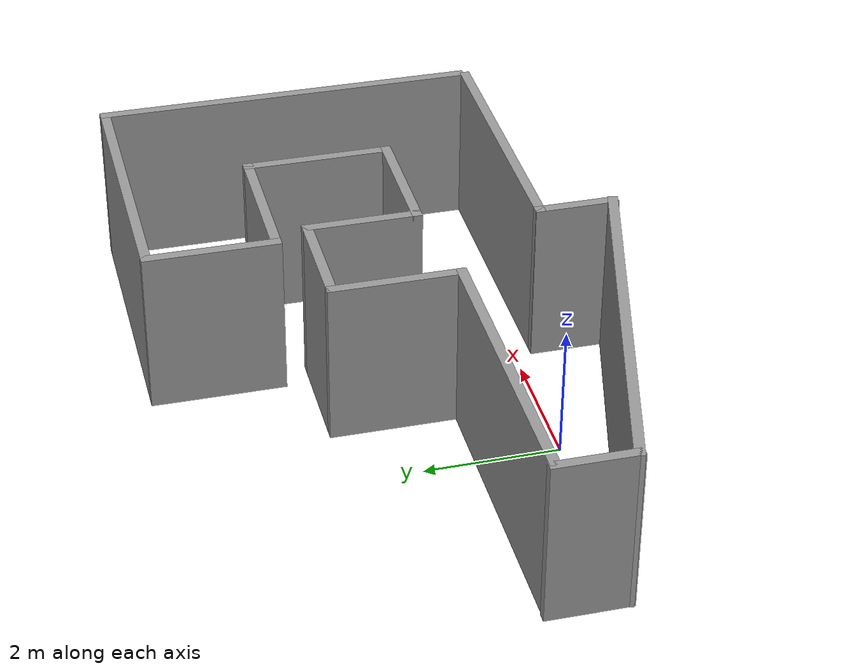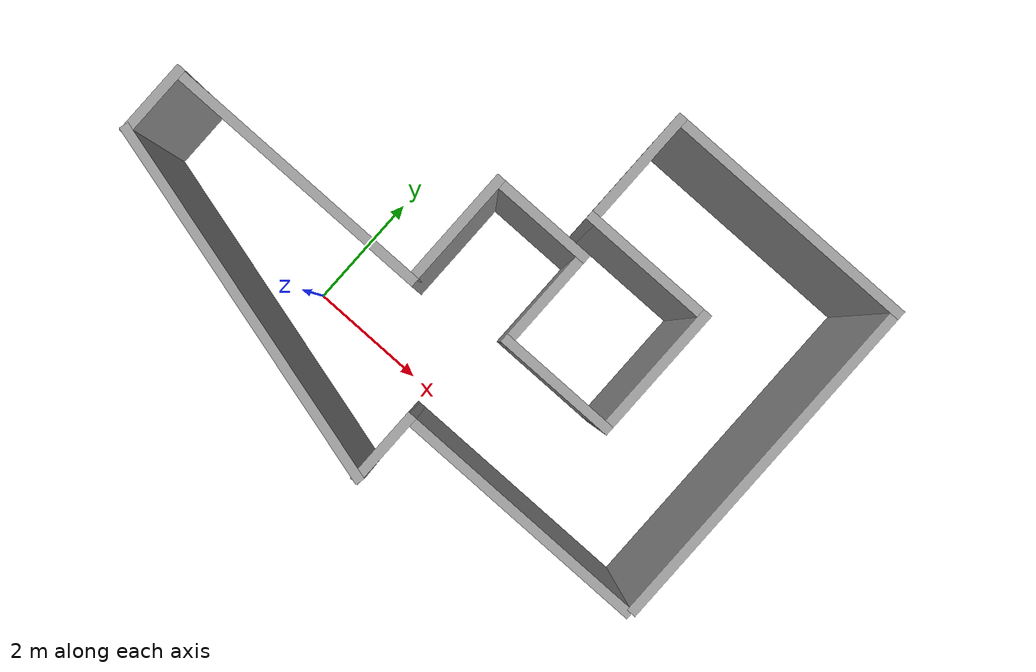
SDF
<?xml version='1.0'?>
<sdf version='1.7'>
  <model name='labyrinth'>
    <pose>1.64047 1.96491 0 0 -0 0</pose>
    <link name='Wall_10'>
      <collision name='Wall_10_Collision'>
        <geometry>
          <box>
            <size>2 0.15 2.5</size>
          </box>
        </geometry>
        <pose>0 0 1.25 0 -0 0</pose>
      </collision>
      <visual name='Wall_10_Visual'>
        <pose>0 0 1.25 0 -0 0</pose>
        <geometry>
          <box>
            <size>2 0.15 2.5</size>
          </box>
        </geometry>
        <material>
          <script>
            <uri>file://media/materials/scripts/gazebo.material</uri>
            <name>Gazebo/Grey</name>
          </script>
          <ambient>1 1 1 1</ambient>
        </material>
        <meta>
          <layer>0</layer>
        </meta>
      </visual>
      <pose>2.01446 -0.541626 0 0 -0 0</pose>
    </link>
    <link name='Wall_14'>
      <collision name='Wall_14_Collision'>
        <geometry>
          <box>
            <size>2.25 0.15 2.5</size>
          </box>
        </geometry>
        <pose>0 0 1.25 0 -0 0</pose>
      </collision>
      <visual name='Wall_14_Visual'>
        <pose>0 0 1.25 0 -0 0</pose>
        <geometry>
          <box>
            <size>2.25 0.15 2.5</size>
          </box>
        </geometry>
        <material>
          <script>
            <uri>file://media/materials/scripts/gazebo.material</uri>
            <name>Gazebo/Grey</name>
          </script>
          <ambient>1 1 1 1</ambient>
        </material>
        <meta>
          <layer>0</layer>
        </meta>
      </visual>
      <pose>2.93946 0.508374 0 0 -0 1.5708</pose>
    </link>
    <link name='Wall_15'>
      <collision name='Wall_15_Collision'>
        <geometry>
          <box>
            <size>2.25 0.15 2.5</size>
          </box>
        </geometry>
        <pose>0 0 1.25 0 -0 0</pose>
      </collision>
      <visual name='Wall_15_Visual'>
        <pose>0 0 1.25 0 -0 0</pose>
        <geometry>
          <box>
            <size>2.25 0.15 2.5</size>
          </box>
        </geometry>
        <material>
          <script>
            <uri>file://media/materials/scripts/gazebo.material</uri>
            <name>Gazebo/Grey</name>
          </script>
          <ambient>1 1 1 1</ambient>
        </material>
        <meta>
          <layer>0</layer>
        </meta>
      </visual>
      <pose>1.88946 1.55837 0 0 -0 3.14159</pose>
    </link>
    <link name='Wall_16'>
      <collision name='Wall_16_Collision'>
        <geometry>
          <box>
            <size>2 0.15 2.5</size>
          </box>
        </geometry>
        <pose>0 0 1.25 0 -0 0</pose>
      </collision>
      <visual name='Wall_16_Visual'>
        <pose>0 0 1.25 0 -0 0</pose>
        <geometry>
          <box>
            <size>2 0.15 2.5</size>
          </box>
        </geometry>
        <material>
          <script>
            <uri>file://media/materials/scripts/gazebo.material</uri>
            <name>Gazebo/Grey</name>
          </script>
          <ambient>1 1 1 1</ambient>
        </material>
        <meta>
          <layer>0</layer>
        </meta>
      </visual>
      <pose>0.839457 2.48337 0 0 -0 1.5708</pose>
    </link>
    <link name='Wall_17'>
      <collision name='Wall_17_Collision'>
        <geometry>
          <box>
            <size>4.25 0.15 2.5</size>
          </box>
        </geometry>
        <pose>0 0 1.25 0 -0 0</pose>
      </collision>
      <visual name='Wall_17_Visual'>
        <pose>0 0 1.25 0 -0 0</pose>
        <geometry>
          <box>
            <size>4.25 0.15 2.5</size>
          </box>
        </geometry>
        <material>
          <script>
            <uri>file://media/materials/scripts/gazebo.material</uri>
            <name>Gazebo/Grey</name>
          </script>
          <ambient>1 1 1 1</ambient>
        </material>
        <meta>
          <layer>0</layer>
        </meta>
      </visual>
      <pose>2.88946 3.40837 0 0 -0 0</pose>
    </link>
    <link name='Wall_19'>
      <collision name='Wall_19_Collision'>
        <geometry>
          <box>
            <size>5.75 0.15 2.5</size>
          </box>
        </geometry>
        <pose>0 0 1.25 0 -0 0</pose>
      </collision>
      <visual name='Wall_19_Visual'>
        <pose>0 0 1.25 0 -0 0</pose>
        <geometry>
          <box>
            <size>5.75 0.15 2.5</size>
          </box>
        </geometry>
        <material>
          <script>
            <uri>file://media/materials/scripts/gazebo.material</uri>
            <name>Gazebo/Grey</name>
          </script>
          <ambient>1 1 1 1</ambient>
        </material>
        <meta>
          <layer>0</layer>
        </meta>
      </visual>
      <pose>4.93946 0.608374 0 0 -0 -1.5708</pose>
    </link>
    <link name='Wall_2'>
      <collision name='Wall_2_Collision'>
        <geometry>
          <box>
            <size>6.04491 0.15 2.5</size>
          </box>
        </geometry>
        <pose>0 0 1.25 0 -0 0</pose>
      </collision>
      <visual name='Wall_2_Visual'>
        <pose>0 0 1.25 0 -0 0</pose>
        <geometry>
          <box>
            <size>6.04491 0.15 2.5</size>
          </box>
        </geometry>
        <material>
          <script>
            <uri>file://media/materials/scripts/gazebo.material</uri>
            <name>Gazebo/Grey</name>
          </script>
          <ambient>1 1 1 1</ambient>
        </material>
        <meta>
          <layer>0</layer>
        </meta>
      </visual>
      <pose>-2.07414 -2.63458 0 0 -0 -0.259759</pose>
    </link>
    <link name='Wall_21'>
      <collision name='Wall_21_Collision'>
        <geometry>
          <box>
            <size>1.25 0.15 2.5</size>
          </box>
        </geometry>
        <pose>0 0 1.25 0 -0 0</pose>
      </collision>
      <visual name='Wall_21_Visual'>
        <pose>0 0 1.25 0 -0 0</pose>
        <geometry>
          <box>
            <size>1.25 0.15 2.5</size>
          </box>
        </geometry>
        <material>
          <script>
            <uri>file://media/materials/scripts/gazebo.material</uri>
            <name>Gazebo/Grey</name>
          </script>
          <ambient>1 1 1 1</ambient>
        </material>
        <meta>
          <layer>0</layer>
        </meta>
      </visual>
      <pose>0.774437 -2.84163 0 0 -0 1.5708</pose>
    </link>
    <link name='Wall_22'>
      <collision name='Wall_22_Collision'>
        <geometry>
          <box>
            <size>4.25 0.15 2.5</size>
          </box>
        </geometry>
        <pose>0 0 1.25 0 -0 0</pose>
      </collision>
      <visual name='Wall_22_Visual'>
        <pose>0 0 1.25 0 -0 0</pose>
        <geometry>
          <box>
            <size>4.25 0.15 2.5</size>
          </box>
        </geometry>
        <material>
          <script>
            <uri>file://media/materials/scripts/gazebo.material</uri>
            <name>Gazebo/Grey</name>
          </script>
          <ambient>1 1 1 1</ambient>
        </material>
        <meta>
          <layer>0</layer>
        </meta>
      </visual>
      <pose>2.82444 -2.29163 0 0 -0 0</pose>
    </link>
    <link name='Wall_24'>
      <collision name='Wall_24_Collision'>
        <geometry>
          <box>
            <size>1.25 0.15 2.5</size>
          </box>
        </geometry>
        <pose>0 0 1.25 0 -0 0</pose>
      </collision>
      <visual name='Wall_24_Visual'>
        <pose>0 0 1.25 0 -0 0</pose>
        <geometry>
          <box>
            <size>1.25 0.15 2.5</size>
          </box>
        </geometry>
        <material>
          <script>
            <uri>file://media/materials/scripts/gazebo.material</uri>
            <name>Gazebo/Grey</name>
          </script>
          <ambient>1 1 1 1</ambient>
        </material>
        <meta>
          <layer>0</layer>
        </meta>
      </visual>
      <pose>-4.92271 -1.32753 0 0 -0 1.5708</pose>
    </link>
    <link name='Wall_5'>
      <collision name='Wall_5_Collision'>
        <geometry>
          <box>
            <size>4.5 0.15 2.5</size>
          </box>
        </geometry>
        <pose>0 0 1.25 0 -0 0</pose>
      </collision>
      <visual name='Wall_5_Visual'>
        <pose>0 0 1.25 0 -0 0</pose>
        <geometry>
          <box>
            <size>4.5 0.15 2.5</size>
          </box>
        </geometry>
        <material>
          <script>
            <uri>file://media/materials/scripts/gazebo.material</uri>
            <name>Gazebo/Grey</name>
          </script>
          <ambient>1 1 1 1</ambient>
        </material>
        <meta>
          <layer>0</layer>
        </meta>
      </visual>
      <pose>-2.68554 -0.791626 0 0 -0 0</pose>
    </link>
    <link name='Wall_7'>
      <collision name='Wall_7_Collision'>
        <geometry>
          <box>
            <size>2 0.15 2.5</size>
          </box>
        </geometry>
        <pose>0 0 1.25 0 -0 0</pose>
      </collision>
      <visual name='Wall_7_Visual'>
        <pose>0 0 1.25 0 -0 0</pose>
        <geometry>
          <box>
            <size>2 0.15 2.5</size>
          </box>
        </geometry>
        <material>
          <script>
            <uri>file://media/materials/scripts/gazebo.material</uri>
            <name>Gazebo/Grey</name>
          </script>
          <ambient>1 1 1 1</ambient>
        </material>
        <meta>
          <layer>0</layer>
        </meta>
      </visual>
      <pose>-0.510543 0.133374 0 0 -0 1.5708</pose>
    </link>
    <link name='Wall_8'>
      <collision name='Wall_8_Collision'>
        <geometry>
          <box>
            <size>1.75 0.15 2.5</size>
          </box>
        </geometry>
        <pose>0 0 1.25 0 -0 0</pose>
      </collision>
      <visual name='Wall_8_Visual'>
        <pose>0 0 1.25 0 -0 0</pose>
        <geometry>
          <box>
            <size>1.75 0.15 2.5</size>
          </box>
        </geometry>
        <material>
          <script>
            <uri>file://media/materials/scripts/gazebo.material</uri>
            <name>Gazebo/Grey</name>
          </script>
          <ambient>1 1 1 1</ambient>
        </material>
        <meta>
          <layer>0</layer>
        </meta>
      </visual>
      <pose>0.289457 1.05837 0 0 -0 0</pose>
    </link>
    <link name='Wall_9'>
      <collision name='Wall_9_Collision'>
        <geometry>
          <box>
            <size>1.75 0.15 2.5</size>
          </box>
        </geometry>
        <pose>0 0 1.25 0 -0 0</pose>
      </collision>
      <visual name='Wall_9_Visual'>
        <pose>0 0 1.25 0 -0 0</pose>
        <geometry>
          <box>
            <size>1.75 0.15 2.5</size>
          </box>
        </geometry>
        <material>
          <script>
            <uri>file://media/materials/scripts/gazebo.material</uri>
            <name>Gazebo/Grey</name>
          </script>
          <ambient>1 1 1 1</ambient>
        </material>
        <meta>
          <layer>0</layer>
        </meta>
      </visual>
      <pose>1.08946 0.258374 0 0 -0 -1.5708</pose>
    </link>
    <static>1</static>
  </model>
</sdf>
